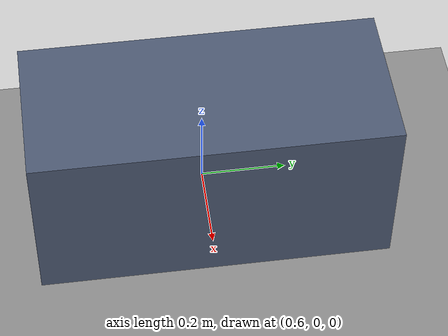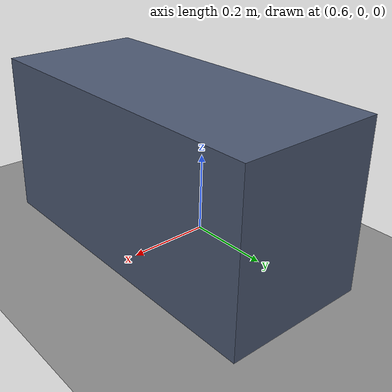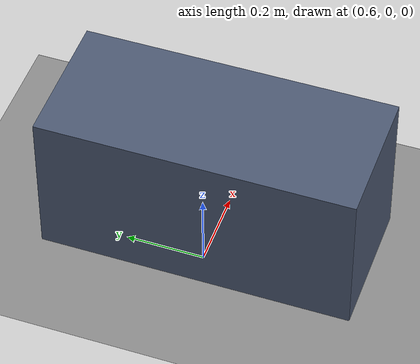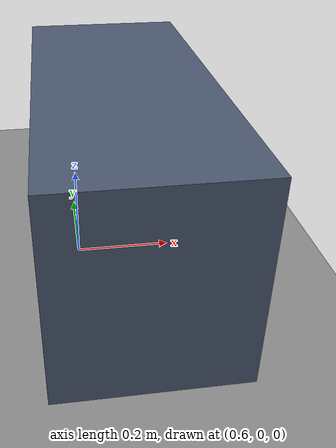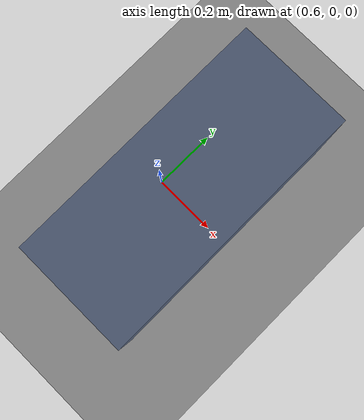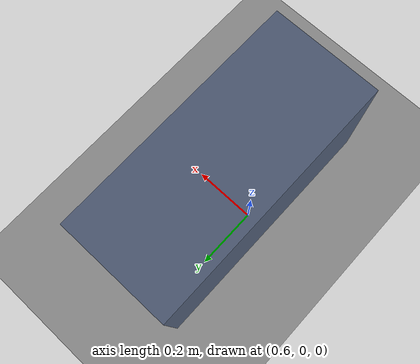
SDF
<?xml version="1.0"?>
<sdf version="1.6">
  <world name="dual_arm_demo">
    <gravity>0 0 -9.81</gravity>
    <physics name="default_physics" type="ode">
      <max_step_size>0.001</max_step_size>
      <real_time_update_rate>1000</real_time_update_rate>
      <!-- 小慣性の指関節と有限トルクモータに対する拘束計算 -->
      <ode>
        <solver><type>quick</type><iters>200</iters><sor>1.0</sor></solver>
        <constraints><cfm>0.00000001</cfm><contact_max_correcting_vel>0.1</contact_max_correcting_vel><contact_surface_layer>0.001</contact_surface_layer></constraints>
      </ode>
    </physics>
    <light name="sun" type="directional">
      <pose>0 0 10 0 0 0</pose>
      <diffuse>0.8 0.8 0.8 1</diffuse>
      <specular>0.2 0.2 0.2 1</specular>
      <direction>-0.4 0.2 -0.9</direction>
      <cast_shadows>true</cast_shadows>
    </light>
    <model name="ground">
      <static>true</static>
      <link name="link">
        <collision name="collision"><geometry><plane><normal>0 0 1</normal><size>10 10</size></plane></geometry></collision>
        <visual name="visual"><geometry><plane><normal>0 0 1</normal><size>10 10</size></plane></geometry><material><ambient>0.55 0.55 0.55 1</ambient></material></visual>
      </link>
    </model>
    <model name="work_table">
      <static>true</static>
      <pose>0.70 0 0.20 0 0 0</pose>
      <link name="link">
        <collision name="collision"><geometry><box><size>0.35 0.8 0.4</size></box></geometry></collision>
        <visual name="visual"><geometry><box><size>0.35 0.8 0.4</size></box></geometry><material><ambient>0.3 0.35 0.45 1</ambient></material></visual>
      </link>
    </model>
    <gui><camera name="overview"><pose>1.4 -1.4 1.0 0 0.25 2.35</pose></camera></gui>
  </world>
</sdf>
